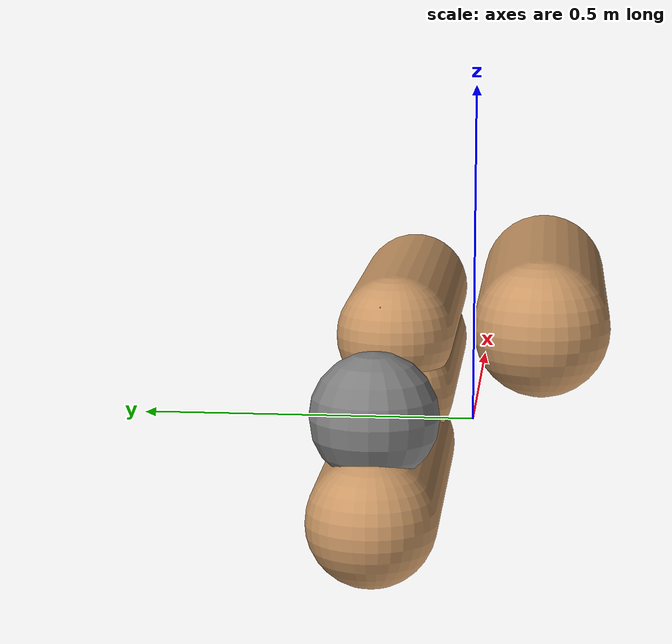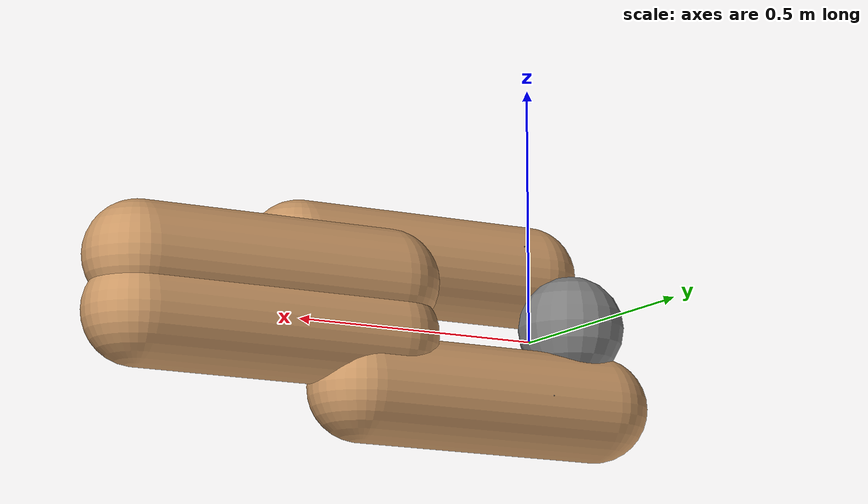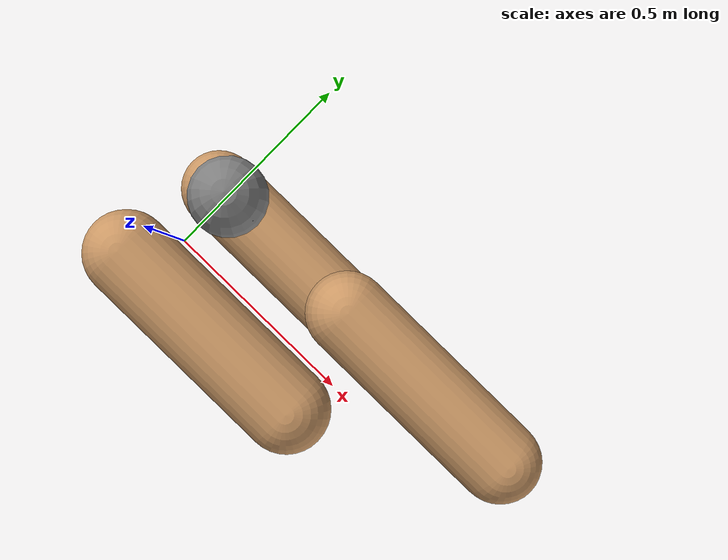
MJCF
<?xml version="1.0" encoding="utf-8"?>
<mujoco model="planar_gripper">
	<compiler angle="degree" coordinate="local" inertiafromgeom="true"/>
	<option integrator="RK4" timestep="0.01"/>
	<custom>
        <numeric name="init_qpos" data="0. 0.5 -0.6 0. -0.5 0.6"/>
	</custom>
	<default class="geom0">
		<joint armature="1" damping="1" limited="true"/>
		<geom conaffinity="1" contype="1" condim="3" density="5.0" friction="1 0.5 0.5" margin="0.001" rgba="0.8 0.6 0.4 1"/>
	</default>
	<asset>
		<texture builtin="gradient" height="100" rgb1="1 1 1" rgb2="0 0 0" type="skybox" width="100"/>
		<texture builtin="flat" height="1278" mark="cross" markrgb="1 1 1" name="texgeom" random="0.01" rgb1="0.8 0.6 0.4" rgb2="0.8 0.6 0.4" type="cube" width="127"/>
		<texture builtin="checker" height="100" name="texplane" rgb1="0 0 0" rgb2="0.8 0.8 0.8" type="2d" width="100"/>
		<material name="MatPlane" reflectance="0.5" shininess="1" specular="1" texrepeat="60 60" texture="texplane"/>
		<material name="geom" texture="texgeom" texuniform="true"/>
        <mesh name="Cylinder" file="cylinder.stl"/>
        <mesh name="CapsuleShort" file="capsule.stl"/>
        <mesh name="CapsuleLong" file="capsule-2.stl"/>
	</asset>
	<worldbody>
		<light cutoff="100" diffuse="1 1 1" dir="0 0 -1.3" directional="true" exponent="1" pos="0 0 1.3" specular="0.1 0.1 0.1"/>
		<body name="root" pos="0 0 0.">
			<camera mode="trackcom" name="track" pos="0 -3 0.3" xyaxes="1 0 0 0 0 1"/>
			<geom name="root_geom" pos="0 0.15 0" size="0.1" type="sphere" density="100"/>
            <joint axis="0 0 1" armature="0" damping="0" limited="true" margin="0.01" name="root" pos="0 0 0" type="hinge" range="-1 1"/>
            <!-- pos coords before 90 rotation: X-Y-Z -->
			<body name="left_finger" pos="0.1 0.15 0.15" euler="0 0 90">
                <joint axis="0 1 0" name="aux_joint_left_finger" range="-.1 .1" type="hinge"/>
				<geom name="aux_geom_left_finger" size="0.001" type="sphere"/>
                <!-- pos coords after 90 rotation: Z-X-Y -->
                <body name="proximal_body_left_finger" pos="0 -0.1 0" euler="0 0 0">
					<joint axis="0 1 0" name="proximal_joint_left_finger" range="-90 0" type="hinge"/>
                    <geom class="geom0" name="proximal_geom_left_finger" pos="-0.25 0.0 0.0" size="1 1 1" type="mesh" mesh="CapsuleLong"/>
					<body name="distal_body_left_finger" pos="0 -0.45 -0.1" euler="0 0 0">
						<joint axis="0 1 0" name="distal_joint_left_finger" range="0 60" type="hinge"/>
						<geom class="geom0" name="distal_geom_left_finger" size="1 1 1" type="mesh" mesh="CapsuleLong" density="10" contype="1" conaffinity="0"/>
					</body>
				</body>
			</body>
			<body name="right_finger" pos="0.1 0.15 -0.15" euler="0 0 90">
				<joint axis="0 1 0" name="aux_joint_right_finger" range="-.1 .1" type="hinge"/>
				<geom fromto="0 0 0 0.1 0 0" name="aux_geom_right_finger" size="0.001" type="capsule"/>
				<body name="proximal_body_right_finger" pos="0 -0.1 0" euler="0 0 0">
					<joint axis="0 1 0" name="proximal_joint_right_finger" pos="0.25 0. 0." range="0 90" type="hinge"/>
					<geom class="geom0" name="proximal_geom_right_finger" size="1 1 1" type="mesh" mesh="CapsuleLong"/>
					<body name="distal_body_right_finger" pos="0. -0.45 0.1" euler="0 0 0">
						<joint axis="0 1 0" name="distal_joint_right_finger" range="-60 0" type="hinge"/>
						<geom class="geom0" name="distal_geom_right_finger" size="1 1 1" type="mesh" mesh="CapsuleLong"/>
					</body>
				</body>
			</body>
        </body>
	</worldbody>
	<actuator>
		<motor ctrllimited="true" ctrlrange="-1.0 1.0" gear="150" joint="proximal_joint_left_finger"/>
		<motor ctrllimited="true" ctrlrange="-1.0 1.0" gear="150" joint="distal_joint_left_finger"/>
		<motor ctrllimited="true" ctrlrange="-1.0 1.0" gear="150" joint="proximal_joint_right_finger"/>
		<motor ctrllimited="true" ctrlrange="-1.0 1.0" gear="150" joint="distal_joint_right_finger"/>
	</actuator>
</mujoco>
